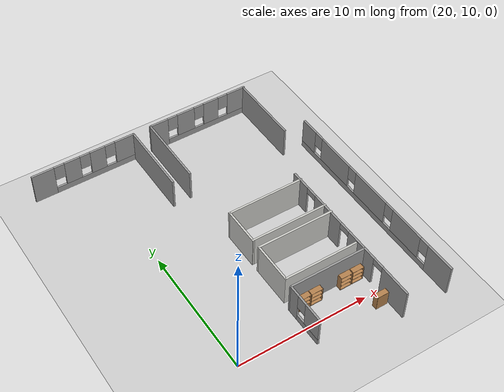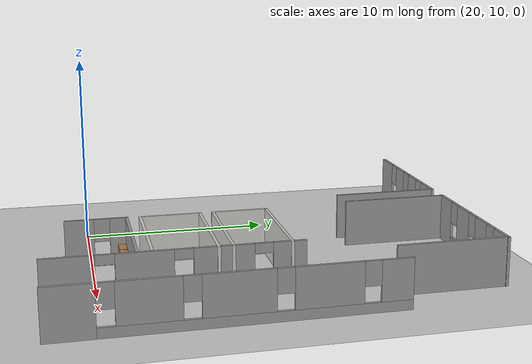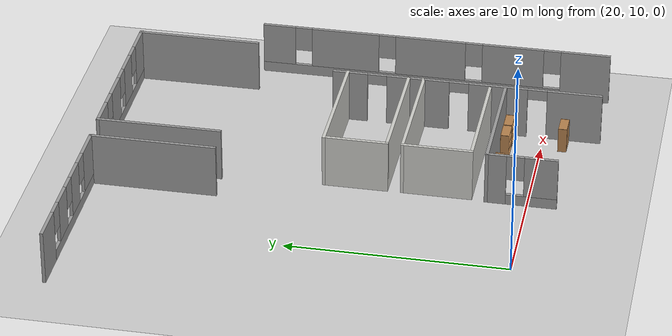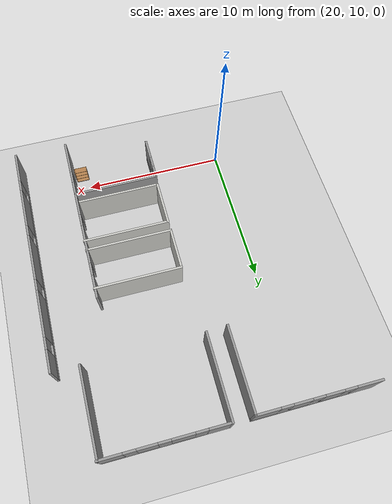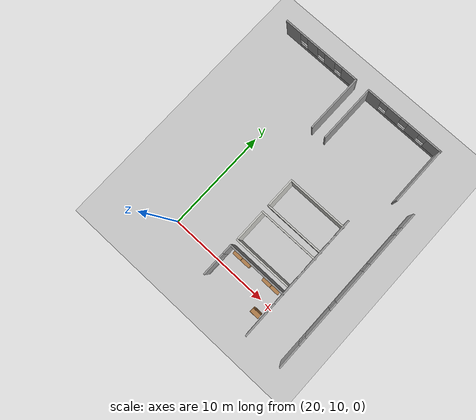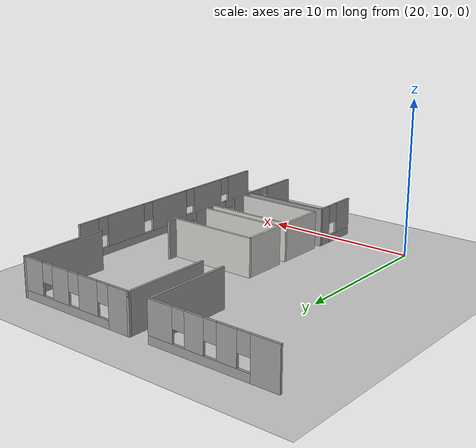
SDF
<sdf version="1.6">
 <world name="default">
  <model name="ground_plane">
   <static>1</static>
   <link name="link">
    <collision name="collision">
     <geometry><plane><normal>0 0 1</normal><size>100 100</size></plane></geometry>
     <surface>
      <contact><collide_bitmask>65535</collide_bitmask></contact>
      <friction><ode><mu>100</mu><mu2>50</mu2></ode></friction>
     </surface>
    </collision>
    <visual name="visual">
     <cast_shadows>0</cast_shadows>
     <geometry><plane><normal>0 0 1</normal><size>100 100</size></plane></geometry>
     <material>
      <script><uri>file://media/materials/scripts/gazebo.material</uri><name>Gazebo/Grey</name></script>
     </material>
    </visual>
   </link>
  </model>
  <model name="firstFloor">
   <pose>-0.116512 3.07366 0 0 -0 0</pose>
   <link name="Wall_16">
    <pose>31.1734 10.582 0 0 0 -1.5708</pose>
    <visual name="Wall_16_Visual_0">
     <pose>-5.43447 0 1.25 0 -0 0</pose>
     <geometry><box><size>1.63106 0.15 2.5</size></box></geometry>
     <material>
      <script><uri>file://media/materials/scripts/gazebo.material</uri><name>Gazebo/Grey</name></script>
      <ambient>1 1 1 1</ambient>
     </material>
     <meta><layer>0</layer></meta>
    </visual>
    <collision name="Wall_16_Collision_0">
     <geometry><box><size>1.63106 0.15 2.5</size></box></geometry>
     <pose>-5.43447 0 1.25 0 -0 0</pose>
    </collision>
    <visual name="Wall_16_Visual_1">
     <pose>-2.26346 0 1.25 0 -0 0</pose>
     <geometry><box><size>2.91096 0.15 2.5</size></box></geometry>
     <material>
      <script><uri>file://media/materials/scripts/gazebo.material</uri><name>Gazebo/Grey</name></script>
      <ambient>1 1 1 1</ambient>
     </material>
     <meta><layer>0</layer></meta>
    </visual>
    <collision name="Wall_16_Collision_1">
     <geometry><box><size>2.91096 0.15 2.5</size></box></geometry>
     <pose>-2.26346 0 1.25 0 -0 0</pose>
    </collision>
    <visual name="Wall_16_Visual_2">
     <pose>1.45677 0 1.25 0 -0 0</pose>
     <geometry><box><size>2.72949 0.15 2.5</size></box></geometry>
     <material>
      <script><uri>file://media/materials/scripts/gazebo.material</uri><name>Gazebo/Grey</name></script>
      <ambient>1 1 1 1</ambient>
     </material>
     <meta><layer>0</layer></meta>
    </visual>
    <collision name="Wall_16_Collision_2">
     <geometry><box><size>2.72949 0.15 2.5</size></box></geometry>
     <pose>1.45677 0 1.25 0 -0 0</pose>
    </collision>
    <visual name="Wall_16_Visual_3">
     <pose>4.98576 0 1.25 0 -0 0</pose>
     <geometry><box><size>2.52848 0.15 2.5</size></box></geometry>
     <material>
      <script><uri>file://media/materials/scripts/gazebo.material</uri><name>Gazebo/Grey</name></script>
      <ambient>1 1 1 1</ambient>
     </material>
     <meta><layer>0</layer></meta>
    </visual>
    <collision name="Wall_16_Collision_3">
     <geometry><box><size>2.52848 0.15 2.5</size></box></geometry>
     <pose>4.98576 0 1.25 0 -0 0</pose>
    </collision>
    <visual name="Wall_16_Visual_4">
     <pose>-4.16894 0 2.25 0 -0 0</pose>
     <geometry><box><size>0.9 0.15 0.5</size></box></geometry>
     <material>
      <script><uri>file://media/materials/scripts/gazebo.material</uri><name>Gazebo/Grey</name></script>
      <ambient>1 1 1 1</ambient>
     </material>
     <meta><layer>0</layer></meta>
    </visual>
    <collision name="Wall_16_Collision_4">
     <geometry><box><size>0.9 0.15 0.5</size></box></geometry>
     <pose>-4.16894 0 2.25 0 -0 0</pose>
    </collision>
    <visual name="Wall_16_Visual_5">
     <pose>-0.357975 0 2.25 0 -0 0</pose>
     <geometry><box><size>0.9 0.15 0.5</size></box></geometry>
     <material>
      <script><uri>file://media/materials/scripts/gazebo.material</uri><name>Gazebo/Grey</name></script>
      <ambient>1 1 1 1</ambient>
     </material>
     <meta><layer>0</layer></meta>
    </visual>
    <collision name="Wall_16_Collision_5">
     <geometry><box><size>0.9 0.15 0.5</size></box></geometry>
     <pose>-0.357975 0 2.25 0 -0 0</pose>
    </collision>
    <visual name="Wall_16_Visual_6">
     <pose>3.27151 0 2.25 0 -0 0</pose>
     <geometry><box><size>0.9 0.15 0.5</size></box></geometry>
     <material>
      <script><uri>file://media/materials/scripts/gazebo.material</uri><name>Gazebo/Grey</name></script>
      <ambient>1 1 1 1</ambient>
     </material>
     <meta><layer>0</layer></meta>
    </visual>
    <collision name="Wall_16_Collision_6">
     <geometry><box><size>0.9 0.15 0.5</size></box></geometry>
     <pose>3.27151 0 2.25 0 -0 0</pose>
    </collision>
   </link>
   <link name="Wall_20">
    <collision name="Wall_20_Collision">
     <geometry><box><size>6 0.15 2.5</size></box></geometry>
     <pose>0 0 1.25 0 -0 0</pose>
    </collision>
    <visual name="Wall_20_Visual">
     <pose>0 0 1.25 0 -0 0</pose>
     <geometry><box><size>6 0.15 2.5</size></box></geometry>
     <material>
      <script><uri>file://media/materials/scripts/gazebo.material</uri><name>Gazebo/CeilingTiled</name></script>
      <ambient>1 1 1 1</ambient>
     </material>
     <meta><layer>0</layer></meta>
    </visual>
    <pose>28.2901 16.1378 0 0 -0 3.14159</pose>
   </link>
   <link name="Wall_21">
    <collision name="Wall_21_Collision">
     <geometry><box><size>3 0.15 2.5</size></box></geometry>
     <pose>0 0 1.25 0 -0 0</pose>
    </collision>
    <visual name="Wall_21_Visual">
     <pose>0 0 1.25 0 -0 0</pose>
     <geometry><box><size>3 0.15 2.5</size></box></geometry>
     <material>
      <script><uri>file://media/materials/scripts/gazebo.material</uri><name>Gazebo/CeilingTiled</name></script>
      <ambient>1 1 1 1</ambient>
     </material>
     <meta><layer>0</layer></meta>
    </visual>
    <pose>25.3651 14.7128 0 0 0 -1.5708</pose>
   </link>
   <link name="Wall_22">
    <collision name="Wall_22_Collision">
     <geometry><box><size>6 0.15 2.5</size></box></geometry>
     <pose>0 0 1.25 0 -0 0</pose>
    </collision>
    <visual name="Wall_22_Visual">
     <pose>0 0 1.25 0 -0 0</pose>
     <geometry><box><size>6 0.15 2.5</size></box></geometry>
     <material>
      <script><uri>file://media/materials/scripts/gazebo.material</uri><name>Gazebo/CeilingTiled</name></script>
      <ambient>1 1 1 1</ambient>
     </material>
     <meta><layer>0</layer></meta>
    </visual>
    <pose>28.2901 13.2878 0 0 -0 0</pose>
   </link>
   <link name="Wall_24">
    <collision name="Wall_24_Collision">
     <geometry><box><size>6 0.15 2.5</size></box></geometry>
     <pose>0 0 1.25 0 -0 0</pose>
    </collision>
    <visual name="Wall_24_Visual">
     <pose>0 0 1.25 0 -0 0</pose>
     <geometry><box><size>6 0.15 2.5</size></box></geometry>
     <material>
      <script><uri>file://media/materials/scripts/gazebo.material</uri><name>Gazebo/CeilingTiled</name></script>
      <ambient>1 1 1 1</ambient>
     </material>
     <meta><layer>0</layer></meta>
    </visual>
    <pose>28.3012 12.5835 0 0 -0 3.14159</pose>
   </link>
   <link name="Wall_25">
    <collision name="Wall_25_Collision">
     <geometry><box><size>3.25 0.15 2.5</size></box></geometry>
     <pose>0 0 1.25 0 -0 0</pose>
    </collision>
    <visual name="Wall_25_Visual">
     <pose>0 0 1.25 0 -0 0</pose>
     <geometry><box><size>3.25 0.15 2.5</size></box></geometry>
     <material>
      <script><uri>file://media/materials/scripts/gazebo.material</uri><name>Gazebo/CeilingTiled</name></script>
      <ambient>1 1 1 1</ambient>
     </material>
     <meta><layer>0</layer></meta>
    </visual>
    <pose>25.3762 11.0335 0 0 0 -1.5708</pose>
   </link>
   <link name="Wall_26">
    <collision name="Wall_26_Collision">
     <geometry><box><size>5.75 0.15 2.5</size></box></geometry>
     <pose>0 0 1.25 0 -0 0</pose>
    </collision>
    <visual name="Wall_26_Visual">
     <pose>0 0 1.25 0 -0 0</pose>
     <geometry><box><size>5.75 0.15 2.5</size></box></geometry>
     <material>
      <script><uri>file://media/materials/scripts/gazebo.material</uri><name>Gazebo/CeilingTiled</name></script>
      <ambient>1 1 1 1</ambient>
     </material>
     <meta><layer>0</layer></meta>
    </visual>
    <pose>28.1762 9.48348 0 0 -0 0</pose>
   </link>
   <link name="Wall_28">
    <collision name="Wall_28_Collision">
     <geometry><box><size>6 0.15 2.5</size></box></geometry>
     <pose>0 0 1.25 0 -0 0</pose>
    </collision>
    <visual name="Wall_28_Visual">
     <pose>0 0 1.25 0 -0 0</pose>
     <geometry><box><size>6 0.15 2.5</size></box></geometry>
     <material>
      <script><uri>file://media/materials/scripts/gazebo.material</uri><name>Gazebo/Grey</name></script>
      <ambient>1 1 1 1</ambient>
     </material>
     <meta><layer>0</layer></meta>
    </visual>
    <pose>28.2321 8.78663 0 0 -0 3.14159</pose>
   </link>
   <link name="Wall_29">
    <pose>25.3071 7.23663 0 0 0 -1.5708</pose>
    <visual name="Wall_29_Visual_0">
     <pose>-1.14911 0 1.25 0 -0 0</pose>
     <geometry><box><size>0.951772 0.15 2.5</size></box></geometry>
     <material>
      <script><uri>file://media/materials/scripts/gazebo.material</uri><name>Gazebo/Grey</name></script>
      <ambient>1 1 1 1</ambient>
     </material>
     <meta><layer>0</layer></meta>
    </visual>
    <collision name="Wall_29_Collision_0">
     <geometry><box><size>0.951772 0.15 2.5</size></box></geometry>
     <pose>-1.14911 0 1.25 0 -0 0</pose>
    </collision>
    <visual name="Wall_29_Visual_1">
     <pose>0.475886 0 0.25 0 -0 0</pose>
     <geometry><box><size>2.29823 0.15 0.5</size></box></geometry>
     <material>
      <script><uri>file://media/materials/scripts/gazebo.material</uri><name>Gazebo/Grey</name></script>
      <ambient>1 1 1 1</ambient>
     </material>
     <meta><layer>0</layer></meta>
    </visual>
    <collision name="Wall_29_Collision_1">
     <geometry><box><size>2.29823 0.15 0.5</size></box></geometry>
     <pose>0.475886 0 0.25 0 -0 0</pose>
    </collision>
    <visual name="Wall_29_Visual_2">
     <pose>0.875886 0 1.5 0 -0 0</pose>
     <geometry><box><size>1.49823 0.15 2</size></box></geometry>
     <material>
      <script><uri>file://media/materials/scripts/gazebo.material</uri><name>Gazebo/Grey</name></script>
      <ambient>1 1 1 1</ambient>
     </material>
     <meta><layer>0</layer></meta>
    </visual>
    <collision name="Wall_29_Collision_2">
     <geometry><box><size>1.49823 0.15 2</size></box></geometry>
     <pose>0.875886 0 1.5 0 -0 0</pose>
    </collision>
    <visual name="Wall_29_Visual_3">
     <pose>-0.273228 0 1.9 0 -0 0</pose>
     <geometry><box><size>0.8 0.15 1.2</size></box></geometry>
     <material>
      <script><uri>file://media/materials/scripts/gazebo.material</uri><name>Gazebo/Grey</name></script>
      <ambient>1 1 1 1</ambient>
     </material>
     <meta><layer>0</layer></meta>
    </visual>
    <collision name="Wall_29_Collision_3">
     <geometry><box><size>0.8 0.15 1.2</size></box></geometry>
     <pose>-0.273228 0 1.9 0 -0 0</pose>
    </collision>
   </link>
   <link name="Wall_48">
    <pose>19.5461 26.3782 0 0 -0 0</pose>
    <visual name="Wall_48_Visual_0">
     <pose>-3.24117 0 1.25 0 -0 0</pose>
     <geometry><box><size>1.71653 0.15 2.5</size></box></geometry>
     <material>
      <script><uri>file://media/materials/scripts/gazebo.material</uri><name>Gazebo/Grey</name></script>
      <ambient>1 1 1 1</ambient>
     </material>
     <meta><layer>0</layer></meta>
    </visual>
    <collision name="Wall_48_Collision_0">
     <geometry><box><size>1.71653 0.15 2.5</size></box></geometry>
     <pose>-3.24117 0 1.25 0 -0 0</pose>
    </collision>
    <visual name="Wall_48_Visual_1">
     <pose>0.858265 0 0.25 0 -0 0</pose>
     <geometry><box><size>6.48234 0.15 0.5</size></box></geometry>
     <material>
      <script><uri>file://media/materials/scripts/gazebo.material</uri><name>Gazebo/Grey</name></script>
      <ambient>1 1 1 1</ambient>
     </material>
     <meta><layer>0</layer></meta>
    </visual>
    <collision name="Wall_48_Collision_1">
     <geometry><box><size>6.48234 0.15 0.5</size></box></geometry>
     <pose>0.858265 0 0.25 0 -0 0</pose>
    </collision>
    <visual name="Wall_48_Visual_2">
     <pose>-0.96873 0 1.5 0 -0 0</pose>
     <geometry><box><size>1.22835 0.15 2</size></box></geometry>
     <material>
      <script><uri>file://media/materials/scripts/gazebo.material</uri><name>Gazebo/Grey</name></script>
      <ambient>1 1 1 1</ambient>
     </material>
     <meta><layer>0</layer></meta>
    </visual>
    <collision name="Wall_48_Collision_2">
     <geometry><box><size>1.22835 0.15 2</size></box></geometry>
     <pose>-0.96873 0 1.5 0 -0 0</pose>
    </collision>
    <visual name="Wall_48_Visual_3">
     <pose>1.04974 0 1.5 0 -0 0</pose>
     <geometry><box><size>1.2086 0.15 2</size></box></geometry>
     <material>
      <script><uri>file://media/materials/scripts/gazebo.material</uri><name>Gazebo/Grey</name></script>
      <ambient>1 1 1 1</ambient>
     </material>
     <meta><layer>0</layer></meta>
    </visual>
    <collision name="Wall_48_Collision_3">
     <geometry><box><size>1.2086 0.15 2</size></box></geometry>
     <pose>1.04974 0 1.5 0 -0 0</pose>
    </collision>
    <visual name="Wall_48_Visual_4">
     <pose>3.27674 0 1.5 0 -0 0</pose>
     <geometry><box><size>1.64539 0.15 2</size></box></geometry>
     <material>
      <script><uri>file://media/materials/scripts/gazebo.material</uri><name>Gazebo/Grey</name></script>
      <ambient>1 1 1 1</ambient>
     </material>
     <meta><layer>0</layer></meta>
    </visual>
    <collision name="Wall_48_Collision_4">
     <geometry><box><size>1.64539 0.15 2</size></box></geometry>
     <pose>3.27674 0 1.5 0 -0 0</pose>
    </collision>
    <visual name="Wall_48_Visual_5">
     <pose>-1.9829 0 1.9 0 -0 0</pose>
     <geometry><box><size>0.8 0.15 1.2</size></box></geometry>
     <material>
      <script><uri>file://media/materials/scripts/gazebo.material</uri><name>Gazebo/Grey</name></script>
      <ambient>1 1 1 1</ambient>
     </material>
     <meta><layer>0</layer></meta>
    </visual>
    <collision name="Wall_48_Collision_5">
     <geometry><box><size>0.8 0.15 1.2</size></box></geometry>
     <pose>-1.9829 0 1.9 0 -0 0</pose>
    </collision>
    <visual name="Wall_48_Visual_6">
     <pose>0.045444 0 1.9 0 -0 0</pose>
     <geometry><box><size>0.8 0.15 1.2</size></box></geometry>
     <material>
      <script><uri>file://media/materials/scripts/gazebo.material</uri><name>Gazebo/Grey</name></script>
      <ambient>1 1 1 1</ambient>
     </material>
     <meta><layer>0</layer></meta>
    </visual>
    <collision name="Wall_48_Collision_6">
     <geometry><box><size>0.8 0.15 1.2</size></box></geometry>
     <pose>0.045444 0 1.9 0 -0 0</pose>
    </collision>
    <visual name="Wall_48_Visual_7">
     <pose>2.05404 0 1.9 0 -0 0</pose>
     <geometry><box><size>0.8 0.15 1.2</size></box></geometry>
     <material>
      <script><uri>file://media/materials/scripts/gazebo.material</uri><name>Gazebo/Grey</name></script>
      <ambient>1 1 1 1</ambient>
     </material>
     <meta><layer>0</layer></meta>
    </visual>
    <collision name="Wall_48_Collision_7">
     <geometry><box><size>0.8 0.15 1.2</size></box></geometry>
     <pose>2.05404 0 1.9 0 -0 0</pose>
    </collision>
   </link>
   <link name="Wall_49">
    <collision name="Wall_49_Collision">
     <geometry><box><size>5.75 0.15 2.5</size></box></geometry>
     <pose>0 0 1.25 0 -0 0</pose>
    </collision>
    <visual name="Wall_49_Visual">
     <pose>0 0 1.25 0 -0 0</pose>
     <geometry><box><size>5.75 0.15 2.5</size></box></geometry>
     <material>
      <script><uri>file://media/materials/scripts/gazebo.material</uri><name>Gazebo/Grey</name></script>
      <ambient>1 1 1 1</ambient>
     </material>
     <meta><layer>0</layer></meta>
    </visual>
    <pose>23.5705 23.5384 0 0 0 -1.5708</pose>
   </link>
   <link name="Wall_51">
    <collision name="Wall_51_Collision">
     <geometry><box><size>5.75 0.15 2.5</size></box></geometry>
     <pose>0 0 1.25 0 -0 0</pose>
    </collision>
    <visual name="Wall_51_Visual">
     <pose>0 0 1.25 0 -0 0</pose>
     <geometry><box><size>5.75 0.15 2.5</size></box></geometry>
     <material>
      <script><uri>file://media/materials/scripts/gazebo.material</uri><name>Gazebo/Grey</name></script>
      <ambient>1 1 1 1</ambient>
     </material>
     <meta><layer>0</layer></meta>
    </visual>
    <pose>24.9879 23.6098 0 0 -0 1.5708</pose>
   </link>
   <link name="Wall_53">
    <pose>29.0322 26.4098 0 0 -0 0</pose>
    <visual name="Wall_53_Visual_0">
     <pose>-3.35683 0 1.25 0 -0 0</pose>
     <geometry><box><size>1.52499 0.15 2.5</size></box></geometry>
     <material>
      <script><uri>file://media/materials/scripts/gazebo.material</uri><name>Gazebo/Grey</name></script>
      <ambient>1 1 1 1</ambient>
     </material>
     <meta><layer>0</layer></meta>
    </visual>
    <collision name="Wall_53_Collision_0">
     <geometry><box><size>1.52499 0.15 2.5</size></box></geometry>
     <pose>-3.35683 0 1.25 0 -0 0</pose>
    </collision>
    <visual name="Wall_53_Visual_1">
     <pose>0.762497 0 0.25 0 -0 0</pose>
     <geometry><box><size>6.71365 0.15 0.5</size></box></geometry>
     <material>
      <script><uri>file://media/materials/scripts/gazebo.material</uri><name>Gazebo/Grey</name></script>
      <ambient>1 1 1 1</ambient>
     </material>
     <meta><layer>0</layer></meta>
    </visual>
    <collision name="Wall_53_Collision_1">
     <geometry><box><size>6.71365 0.15 0.5</size></box></geometry>
     <pose>0.762497 0 0.25 0 -0 0</pose>
    </collision>
    <visual name="Wall_53_Visual_2">
     <pose>-1.06856 0 1.5 0 -0 0</pose>
     <geometry><box><size>1.45153 0.15 2</size></box></geometry>
     <material>
      <script><uri>file://media/materials/scripts/gazebo.material</uri><name>Gazebo/Grey</name></script>
      <ambient>1 1 1 1</ambient>
     </material>
     <meta><layer>0</layer></meta>
    </visual>
    <collision name="Wall_53_Collision_2">
     <geometry><box><size>1.45153 0.15 2</size></box></geometry>
     <pose>-1.06856 0 1.5 0 -0 0</pose>
    </collision>
    <visual name="Wall_53_Visual_3">
     <pose>1.10034 0 1.5 0 -0 0</pose>
     <geometry><box><size>1.28627 0.15 2</size></box></geometry>
     <material>
      <script><uri>file://media/materials/scripts/gazebo.material</uri><name>Gazebo/Grey</name></script>
      <ambient>1 1 1 1</ambient>
     </material>
     <meta><layer>0</layer></meta>
    </visual>
    <collision name="Wall_53_Collision_3">
     <geometry><box><size>1.28627 0.15 2</size></box></geometry>
     <pose>1.10034 0 1.5 0 -0 0</pose>
    </collision>
    <visual name="Wall_53_Visual_4">
     <pose>3.3314 0 1.5 0 -0 0</pose>
     <geometry><box><size>1.57585 0.15 2</size></box></geometry>
     <material>
      <script><uri>file://media/materials/scripts/gazebo.material</uri><name>Gazebo/Grey</name></script>
      <ambient>1 1 1 1</ambient>
     </material>
     <meta><layer>0</layer></meta>
    </visual>
    <collision name="Wall_53_Collision_4">
     <geometry><box><size>1.57585 0.15 2</size></box></geometry>
     <pose>3.3314 0 1.5 0 -0 0</pose>
    </collision>
    <visual name="Wall_53_Visual_5">
     <pose>-2.19433 0 1.9 0 -0 0</pose>
     <geometry><box><size>0.8 0.15 1.2</size></box></geometry>
     <material>
      <script><uri>file://media/materials/scripts/gazebo.material</uri><name>Gazebo/Grey</name></script>
      <ambient>1 1 1 1</ambient>
     </material>
     <meta><layer>0</layer></meta>
    </visual>
    <collision name="Wall_53_Collision_5">
     <geometry><box><size>0.8 0.15 1.2</size></box></geometry>
     <pose>-2.19433 0 1.9 0 -0 0</pose>
    </collision>
    <visual name="Wall_53_Visual_6">
     <pose>0.057199 0 1.9 0 -0 0</pose>
     <geometry><box><size>0.8 0.15 1.2</size></box></geometry>
     <material>
      <script><uri>file://media/materials/scripts/gazebo.material</uri><name>Gazebo/Grey</name></script>
      <ambient>1 1 1 1</ambient>
     </material>
     <meta><layer>0</layer></meta>
    </visual>
    <collision name="Wall_53_Collision_6">
     <geometry><box><size>0.8 0.15 1.2</size></box></geometry>
     <pose>0.057199 0 1.9 0 -0 0</pose>
    </collision>
    <visual name="Wall_53_Visual_7">
     <pose>2.14347 0 1.9 0 -0 0</pose>
     <geometry><box><size>0.8 0.15 1.2</size></box></geometry>
     <material>
      <script><uri>file://media/materials/scripts/gazebo.material</uri><name>Gazebo/Grey</name></script>
      <ambient>1 1 1 1</ambient>
     </material>
     <meta><layer>0</layer></meta>
    </visual>
    <collision name="Wall_53_Collision_7">
     <geometry><box><size>0.8 0.15 1.2</size></box></geometry>
     <pose>2.14347 0 1.9 0 -0 0</pose>
    </collision>
   </link>
   <link name="Wall_54">
    <collision name="Wall_54_Collision">
     <geometry><box><size>5.75 0.15 2.5</size></box></geometry>
     <pose>0 0 1.25 0 -0 0</pose>
    </collision>
    <visual name="Wall_54_Visual">
     <pose>0 0 1.25 0 -0 0</pose>
     <geometry><box><size>5.75 0.15 2.5</size></box></geometry>
     <material>
      <script><uri>file://media/materials/scripts/gazebo.material</uri><name>Gazebo/Grey</name></script>
      <ambient>1 1 1 1</ambient>
     </material>
     <meta><layer>0</layer></meta>
    </visual>
    <pose>33.0368 23.6098 0 0 0 -1.5708</pose>
   </link>
   <link name="Wall_8">
    <pose>34.8468 12.6197 0 0 -0 1.5708</pose>
    <visual name="Wall_8_Visual_0">
     <pose>-7.09151 0 1.25 0 -0 0</pose>
     <geometry><box><size>2.31697 0.15 2.5</size></box></geometry>
     <material>
      <script><uri>file://media/materials/scripts/gazebo.material</uri><name>Gazebo/Grey</name></script>
      <ambient>1 1 1 1</ambient>
     </material>
     <meta><layer>0</layer></meta>
    </visual>
    <collision name="Wall_8_Collision_0">
     <geometry><box><size>2.31697 0.15 2.5</size></box></geometry>
     <pose>-7.09151 0 1.25 0 -0 0</pose>
    </collision>
    <visual name="Wall_8_Visual_1">
     <pose>1.15849 0 0.25 0 -0 0</pose>
     <geometry><box><size>14.183 0.15 0.5</size></box></geometry>
     <material>
      <script><uri>file://media/materials/scripts/gazebo.material</uri><name>Gazebo/Grey</name></script>
      <ambient>1 1 1 1</ambient>
     </material>
     <meta><layer>0</layer></meta>
    </visual>
    <collision name="Wall_8_Collision_1">
     <geometry><box><size>14.183 0.15 0.5</size></box></geometry>
     <pose>1.15849 0 0.25 0 -0 0</pose>
    </collision>
    <visual name="Wall_8_Visual_2">
     <pose>-3.68153 0 1.5 0 -0 0</pose>
     <geometry><box><size>2.903 0.15 2</size></box></geometry>
     <material>
      <script><uri>file://media/materials/scripts/gazebo.material</uri><name>Gazebo/Grey</name></script>
      <ambient>1 1 1 1</ambient>
     </material>
     <meta><layer>0</layer></meta>
    </visual>
    <collision name="Wall_8_Collision_2">
     <geometry><box><size>2.903 0.15 2</size></box></geometry>
     <pose>-3.68153 0 1.5 0 -0 0</pose>
    </collision>
    <visual name="Wall_8_Visual_3">
     <pose>0.233074 0 1.5 0 -0 0</pose>
     <geometry><box><size>3.3262 0.15 2</size></box></geometry>
     <material>
      <script><uri>file://media/materials/scripts/gazebo.material</uri><name>Gazebo/Grey</name></script>
      <ambient>1 1 1 1</ambient>
     </material>
     <meta><layer>0</layer></meta>
    </visual>
    <collision name="Wall_8_Collision_3">
     <geometry><box><size>3.3262 0.15 2</size></box></geometry>
     <pose>0.233074 0 1.5 0 -0 0</pose>
    </collision>
    <visual name="Wall_8_Visual_4">
     <pose>4.30637 0 1.5 0 -0 0</pose>
     <geometry><box><size>3.2204 0.15 2</size></box></geometry>
     <material>
      <script><uri>file://media/materials/scripts/gazebo.material</uri><name>Gazebo/Grey</name></script>
      <ambient>1 1 1 1</ambient>
     </material>
     <meta><layer>0</layer></meta>
    </visual>
    <collision name="Wall_8_Collision_4">
     <geometry><box><size>3.2204 0.15 2</size></box></geometry>
     <pose>4.30637 0 1.5 0 -0 0</pose>
    </collision>
    <visual name="Wall_8_Visual_5">
     <pose>7.48329 0 1.5 0 -0 0</pose>
     <geometry><box><size>1.53343 0.15 2</size></box></geometry>
     <material>
      <script><uri>file://media/materials/scripts/gazebo.material</uri><name>Gazebo/Grey</name></script>
      <ambient>1 1 1 1</ambient>
     </material>
     <meta><layer>0</layer></meta>
    </visual>
    <collision name="Wall_8_Collision_5">
     <geometry><box><size>1.53343 0.15 2</size></box></geometry>
     <pose>7.48329 0 1.5 0 -0 0</pose>
    </collision>
    <visual name="Wall_8_Visual_6">
     <pose>-5.53303 0 1.9 0 -0 0</pose>
     <geometry><box><size>0.8 0.15 1.2</size></box></geometry>
     <material>
      <script><uri>file://media/materials/scripts/gazebo.material</uri><name>Gazebo/Grey</name></script>
      <ambient>1 1 1 1</ambient>
     </material>
     <meta><layer>0</layer></meta>
    </visual>
    <collision name="Wall_8_Collision_6">
     <geometry><box><size>0.8 0.15 1.2</size></box></geometry>
     <pose>-5.53303 0 1.9 0 -0 0</pose>
    </collision>
    <visual name="Wall_8_Visual_7">
     <pose>-1.83003 0 1.9 0 -0 0</pose>
     <geometry><box><size>0.8 0.15 1.2</size></box></geometry>
     <material>
      <script><uri>file://media/materials/scripts/gazebo.material</uri><name>Gazebo/Grey</name></script>
      <ambient>1 1 1 1</ambient>
     </material>
     <meta><layer>0</layer></meta>
    </visual>
    <collision name="Wall_8_Collision_7">
     <geometry><box><size>0.8 0.15 1.2</size></box></geometry>
     <pose>-1.83003 0 1.9 0 -0 0</pose>
    </collision>
    <visual name="Wall_8_Visual_8">
     <pose>2.29617 0 1.9 0 -0 0</pose>
     <geometry><box><size>0.8 0.15 1.2</size></box></geometry>
     <material>
      <script><uri>file://media/materials/scripts/gazebo.material</uri><name>Gazebo/Grey</name></script>
      <ambient>1 1 1 1</ambient>
     </material>
     <meta><layer>0</layer></meta>
    </visual>
    <collision name="Wall_8_Collision_8">
     <geometry><box><size>0.8 0.15 1.2</size></box></geometry>
     <pose>2.29617 0 1.9 0 -0 0</pose>
    </collision>
    <visual name="Wall_8_Visual_9">
     <pose>6.31657 0 1.9 0 -0 0</pose>
     <geometry><box><size>0.8 0.15 1.2</size></box></geometry>
     <material>
      <script><uri>file://media/materials/scripts/gazebo.material</uri><name>Gazebo/Grey</name></script>
      <ambient>1 1 1 1</ambient>
     </material>
     <meta><layer>0</layer></meta>
    </visual>
    <collision name="Wall_8_Collision_9">
     <geometry><box><size>0.8 0.15 1.2</size></box></geometry>
     <pose>6.31657 0 1.9 0 -0 0</pose>
    </collision>
   </link>
   <static>1</static>
  </model>
  <model name="bookshelf">
   <static>1</static>
   <link name="link">
    <inertial><mass>1</mass></inertial>
    <collision name="back">
     <pose>0 0.005 0.6 0 -0 0</pose>
     <geometry><box><size>0.9 0.01 1.2</size></box></geometry>
    </collision>
    <visual name="visual1">
     <pose>0 0.005 0.6 0 -0 0</pose>
     <geometry><box><size>0.9 0.01 1.2</size></box></geometry>
     <material>
      <script><uri>file://media/materials/scripts/gazebo.material</uri><name>Gazebo/Wood</name></script>
     </material>
    </visual>
    <collision name="left_side">
     <pose>0.45 -0.195 0.6 0 -0 0</pose>
     <geometry><box><size>0.02 0.4 1.2</size></box></geometry>
    </collision>
    <visual name="visual2">
     <pose>0.45 -0.195 0.6 0 -0 0</pose>
     <geometry><box><size>0.02 0.4 1.2</size></box></geometry>
     <material>
      <script><uri>file://media/materials/scripts/gazebo.material</uri><name>Gazebo/Wood</name></script>
     </material>
    </visual>
    <collision name="right_side">
     <pose>-0.45 -0.195 0.6 0 -0 0</pose>
     <geometry><box><size>0.02 0.4 1.2</size></box></geometry>
    </collision>
    <visual name="visual3">
     <pose>-0.45 -0.195 0.6 0 -0 0</pose>
     <geometry><box><size>0.02 0.4 1.2</size></box></geometry>
     <material>
      <script><uri>file://media/materials/scripts/gazebo.material</uri><name>Gazebo/Wood</name></script>
     </material>
    </visual>
    <collision name="bottom">
     <pose>0 -0.195 0.03 0 -0 0</pose>
     <geometry><box><size>0.88 0.4 0.06</size></box></geometry>
    </collision>
    <visual name="visual4">
     <pose>0 -0.195 0.03 0 -0 0</pose>
     <geometry><box><size>0.88 0.4 0.06</size></box></geometry>
     <material>
      <script><uri>file://media/materials/scripts/gazebo.material</uri><name>Gazebo/Wood</name></script>
     </material>
    </visual>
    <collision name="top">
     <pose>0 -0.195 1.19 0 -0 0</pose>
     <geometry><box><size>0.88 0.4 0.02</size></box></geometry>
    </collision>
    <visual name="visual5">
     <pose>0 -0.195 1.19 0 -0 0</pose>
     <geometry><box><size>0.88 0.4 0.02</size></box></geometry>
     <material>
      <script><uri>file://media/materials/scripts/gazebo.material</uri><name>Gazebo/Wood</name></script>
     </material>
    </visual>
    <collision name="low_shelf">
     <pose>0 -0.195 0.43 0 -0 0</pose>
     <geometry><box><size>0.88 0.4 0.02</size></box></geometry>
    </collision>
    <visual name="visual6">
     <pose>0 -0.195 0.43 0 -0 0</pose>
     <geometry><box><size>0.88 0.4 0.02</size></box></geometry>
     <material>
      <script><uri>file://media/materials/scripts/gazebo.material</uri><name>Gazebo/Wood</name></script>
     </material>
    </visual>
    <collision name="high_shelf">
     <pose>0 -0.195 0.8 0 -0 0</pose>
     <geometry><box><size>0.88 0.4 0.02</size></box></geometry>
    </collision>
    <visual name="visual7">
     <pose>0 -0.195 0.8 0 -0 0</pose>
     <geometry><box><size>0.88 0.4 0.02</size></box></geometry>
     <material>
      <script><uri>file://media/materials/scripts/gazebo.material</uri><name>Gazebo/Wood</name></script>
     </material>
    </visual>
   </link>
   <pose>26.0602 11.75 0 0 -0 0</pose>
  </model>
  <model name="bookshelf_clone">
   <static>1</static>
   <link name="link">
    <inertial><mass>1</mass></inertial>
    <collision name="back">
     <pose>0 0.005 0.6 0 -0 0</pose>
     <geometry><box><size>0.9 0.01 1.2</size></box></geometry>
    </collision>
    <visual name="visual1">
     <pose>0 0.005 0.6 0 -0 0</pose>
     <geometry><box><size>0.9 0.01 1.2</size></box></geometry>
     <material>
      <script><uri>file://media/materials/scripts/gazebo.material</uri><name>Gazebo/Wood</name></script>
     </material>
    </visual>
    <collision name="left_side">
     <pose>0.45 -0.195 0.6 0 -0 0</pose>
     <geometry><box><size>0.02 0.4 1.2</size></box></geometry>
    </collision>
    <visual name="visual2">
     <pose>0.45 -0.195 0.6 0 -0 0</pose>
     <geometry><box><size>0.02 0.4 1.2</size></box></geometry>
     <material>
      <script><uri>file://media/materials/scripts/gazebo.material</uri><name>Gazebo/Wood</name></script>
     </material>
    </visual>
    <collision name="right_side">
     <pose>-0.45 -0.195 0.6 0 -0 0</pose>
     <geometry><box><size>0.02 0.4 1.2</size></box></geometry>
    </collision>
    <visual name="visual3">
     <pose>-0.45 -0.195 0.6 0 -0 0</pose>
     <geometry><box><size>0.02 0.4 1.2</size></box></geometry>
     <material>
      <script><uri>file://media/materials/scripts/gazebo.material</uri><name>Gazebo/Wood</name></script>
     </material>
    </visual>
    <collision name="bottom">
     <pose>0 -0.195 0.03 0 -0 0</pose>
     <geometry><box><size>0.88 0.4 0.06</size></box></geometry>
    </collision>
    <visual name="visual4">
     <pose>0 -0.195 0.03 0 -0 0</pose>
     <geometry><box><size>0.88 0.4 0.06</size></box></geometry>
     <material>
      <script><uri>file://media/materials/scripts/gazebo.material</uri><name>Gazebo/Wood</name></script>
     </material>
    </visual>
    <collision name="top">
     <pose>0 -0.195 1.19 0 -0 0</pose>
     <geometry><box><size>0.88 0.4 0.02</size></box></geometry>
    </collision>
    <visual name="visual5">
     <pose>0 -0.195 1.19 0 -0 0</pose>
     <geometry><box><size>0.88 0.4 0.02</size></box></geometry>
     <material>
      <script><uri>file://media/materials/scripts/gazebo.material</uri><name>Gazebo/Wood</name></script>
     </material>
    </visual>
    <collision name="low_shelf">
     <pose>0 -0.195 0.43 0 -0 0</pose>
     <geometry><box><size>0.88 0.4 0.02</size></box></geometry>
    </collision>
    <visual name="visual6">
     <pose>0 -0.195 0.43 0 -0 0</pose>
     <geometry><box><size>0.88 0.4 0.02</size></box></geometry>
     <material>
      <script><uri>file://media/materials/scripts/gazebo.material</uri><name>Gazebo/Wood</name></script>
     </material>
    </visual>
    <collision name="high_shelf">
     <pose>0 -0.195 0.8 0 -0 0</pose>
     <geometry><box><size>0.88 0.4 0.02</size></box></geometry>
    </collision>
    <visual name="visual7">
     <pose>0 -0.195 0.8 0 -0 0</pose>
     <geometry><box><size>0.88 0.4 0.02</size></box></geometry>
     <material>
      <script><uri>file://media/materials/scripts/gazebo.material</uri><name>Gazebo/Wood</name></script>
     </material>
    </visual>
   </link>
   <pose>26.9959 11.75 0 0 -0 0</pose>
  </model>
  <model name="bookshelf_clone_clone">
   <static>1</static>
   <link name="link">
    <inertial><mass>1</mass></inertial>
    <collision name="back">
     <pose>0 0.005 0.6 0 -0 0</pose>
     <geometry><box><size>0.9 0.01 1.2</size></box></geometry>
    </collision>
    <visual name="visual1">
     <pose>0 0.005 0.6 0 -0 0</pose>
     <geometry><box><size>0.9 0.01 1.2</size></box></geometry>
     <material>
      <script><uri>file://media/materials/scripts/gazebo.material</uri><name>Gazebo/Wood</name></script>
     </material>
    </visual>
    <collision name="left_side">
     <pose>0.45 -0.195 0.6 0 -0 0</pose>
     <geometry><box><size>0.02 0.4 1.2</size></box></geometry>
    </collision>
    <visual name="visual2">
     <pose>0.45 -0.195 0.6 0 -0 0</pose>
     <geometry><box><size>0.02 0.4 1.2</size></box></geometry>
     <material>
      <script><uri>file://media/materials/scripts/gazebo.material</uri><name>Gazebo/Wood</name></script>
     </material>
    </visual>
    <collision name="right_side">
     <pose>-0.45 -0.195 0.6 0 -0 0</pose>
     <geometry><box><size>0.02 0.4 1.2</size></box></geometry>
    </collision>
    <visual name="visual3">
     <pose>-0.45 -0.195 0.6 0 -0 0</pose>
     <geometry><box><size>0.02 0.4 1.2</size></box></geometry>
     <material>
      <script><uri>file://media/materials/scripts/gazebo.material</uri><name>Gazebo/Wood</name></script>
     </material>
    </visual>
    <collision name="bottom">
     <pose>0 -0.195 0.03 0 -0 0</pose>
     <geometry><box><size>0.88 0.4 0.06</size></box></geometry>
    </collision>
    <visual name="visual4">
     <pose>0 -0.195 0.03 0 -0 0</pose>
     <geometry><box><size>0.88 0.4 0.06</size></box></geometry>
     <material>
      <script><uri>file://media/materials/scripts/gazebo.material</uri><name>Gazebo/Wood</name></script>
     </material>
    </visual>
    <collision name="top">
     <pose>0 -0.195 1.19 0 -0 0</pose>
     <geometry><box><size>0.88 0.4 0.02</size></box></geometry>
    </collision>
    <visual name="visual5">
     <pose>0 -0.195 1.19 0 -0 0</pose>
     <geometry><box><size>0.88 0.4 0.02</size></box></geometry>
     <material>
      <script><uri>file://media/materials/scripts/gazebo.material</uri><name>Gazebo/Wood</name></script>
     </material>
    </visual>
    <collision name="low_shelf">
     <pose>0 -0.195 0.43 0 -0 0</pose>
     <geometry><box><size>0.88 0.4 0.02</size></box></geometry>
    </collision>
    <visual name="visual6">
     <pose>0 -0.195 0.43 0 -0 0</pose>
     <geometry><box><size>0.88 0.4 0.02</size></box></geometry>
     <material>
      <script><uri>file://media/materials/scripts/gazebo.material</uri><name>Gazebo/Wood</name></script>
     </material>
    </visual>
    <collision name="high_shelf">
     <pose>0 -0.195 0.8 0 -0 0</pose>
     <geometry><box><size>0.88 0.4 0.02</size></box></geometry>
    </collision>
    <visual name="visual7">
     <pose>0 -0.195 0.8 0 -0 0</pose>
     <geometry><box><size>0.88 0.4 0.02</size></box></geometry>
     <material>
      <script><uri>file://media/materials/scripts/gazebo.material</uri><name>Gazebo/Wood</name></script>
     </material>
    </visual>
   </link>
   <pose>29.3855 11.75 0 0 -0 0</pose>
  </model>
  <model name="bookshelf_clone_clone_0">
   <static>1</static>
   <link name="link">
    <inertial><mass>1</mass></inertial>
    <collision name="back">
     <pose>0 0.005 0.6 0 -0 0</pose>
     <geometry><box><size>0.9 0.01 1.2</size></box></geometry>
    </collision>
    <visual name="visual1">
     <pose>0 0.005 0.6 0 -0 0</pose>
     <geometry><box><size>0.9 0.01 1.2</size></box></geometry>
     <material>
      <script><uri>file://media/materials/scripts/gazebo.material</uri><name>Gazebo/Wood</name></script>
     </material>
    </visual>
    <collision name="left_side">
     <pose>0.45 -0.195 0.6 0 -0 0</pose>
     <geometry><box><size>0.02 0.4 1.2</size></box></geometry>
    </collision>
    <visual name="visual2">
     <pose>0.45 -0.195 0.6 0 -0 0</pose>
     <geometry><box><size>0.02 0.4 1.2</size></box></geometry>
     <material>
      <script><uri>file://media/materials/scripts/gazebo.material</uri><name>Gazebo/Wood</name></script>
     </material>
    </visual>
    <collision name="right_side">
     <pose>-0.45 -0.195 0.6 0 -0 0</pose>
     <geometry><box><size>0.02 0.4 1.2</size></box></geometry>
    </collision>
    <visual name="visual3">
     <pose>-0.45 -0.195 0.6 0 -0 0</pose>
     <geometry><box><size>0.02 0.4 1.2</size></box></geometry>
     <material>
      <script><uri>file://media/materials/scripts/gazebo.material</uri><name>Gazebo/Wood</name></script>
     </material>
    </visual>
    <collision name="bottom">
     <pose>0 -0.195 0.03 0 -0 0</pose>
     <geometry><box><size>0.88 0.4 0.06</size></box></geometry>
    </collision>
    <visual name="visual4">
     <pose>0 -0.195 0.03 0 -0 0</pose>
     <geometry><box><size>0.88 0.4 0.06</size></box></geometry>
     <material>
      <script><uri>file://media/materials/scripts/gazebo.material</uri><name>Gazebo/Wood</name></script>
     </material>
    </visual>
    <collision name="top">
     <pose>0 -0.195 1.19 0 -0 0</pose>
     <geometry><box><size>0.88 0.4 0.02</size></box></geometry>
    </collision>
    <visual name="visual5">
     <pose>0 -0.195 1.19 0 -0 0</pose>
     <geometry><box><size>0.88 0.4 0.02</size></box></geometry>
     <material>
      <script><uri>file://media/materials/scripts/gazebo.material</uri><name>Gazebo/Wood</name></script>
     </material>
    </visual>
    <collision name="low_shelf">
     <pose>0 -0.195 0.43 0 -0 0</pose>
     <geometry><box><size>0.88 0.4 0.02</size></box></geometry>
    </collision>
    <visual name="visual6">
     <pose>0 -0.195 0.43 0 -0 0</pose>
     <geometry><box><size>0.88 0.4 0.02</size></box></geometry>
     <material>
      <script><uri>file://media/materials/scripts/gazebo.material</uri><name>Gazebo/Wood</name></script>
     </material>
    </visual>
    <collision name="high_shelf">
     <pose>0 -0.195 0.8 0 -0 0</pose>
     <geometry><box><size>0.88 0.4 0.02</size></box></geometry>
    </collision>
    <visual name="visual7">
     <pose>0 -0.195 0.8 0 -0 0</pose>
     <geometry><box><size>0.88 0.4 0.02</size></box></geometry>
     <material>
      <script><uri>file://media/materials/scripts/gazebo.material</uri><name>Gazebo/Wood</name></script>
     </material>
    </visual>
   </link>
   <pose>30.3266 11.75 0 0 -0 0</pose>
  </model>
  <model name="bookshelf_clone_clone_1">
   <static>1</static>
   <link name="link">
    <inertial><mass>1</mass></inertial>
    <collision name="back">
     <pose>0 0.005 0.6 0 -0 0</pose>
     <geometry><box><size>0.9 0.01 1.2</size></box></geometry>
    </collision>
    <visual name="visual1">
     <pose>0 0.005 0.6 0 -0 0</pose>
     <geometry><box><size>0.9 0.01 1.2</size></box></geometry>
     <material>
      <script><uri>file://media/materials/scripts/gazebo.material</uri><name>Gazebo/Wood</name></script>
     </material>
    </visual>
    <collision name="left_side">
     <pose>0.45 -0.195 0.6 0 -0 0</pose>
     <geometry><box><size>0.02 0.4 1.2</size></box></geometry>
    </collision>
    <visual name="visual2">
     <pose>0.45 -0.195 0.6 0 -0 0</pose>
     <geometry><box><size>0.02 0.4 1.2</size></box></geometry>
     <material>
      <script><uri>file://media/materials/scripts/gazebo.material</uri><name>Gazebo/Wood</name></script>
     </material>
    </visual>
    <collision name="right_side">
     <pose>-0.45 -0.195 0.6 0 -0 0</pose>
     <geometry><box><size>0.02 0.4 1.2</size></box></geometry>
    </collision>
    <visual name="visual3">
     <pose>-0.45 -0.195 0.6 0 -0 0</pose>
     <geometry><box><size>0.02 0.4 1.2</size></box></geometry>
     <material>
      <script><uri>file://media/materials/scripts/gazebo.material</uri><name>Gazebo/Wood</name></script>
     </material>
    </visual>
    <collision name="bottom">
     <pose>0 -0.195 0.03 0 -0 0</pose>
     <geometry><box><size>0.88 0.4 0.06</size></box></geometry>
    </collision>
    <visual name="visual4">
     <pose>0 -0.195 0.03 0 -0 0</pose>
     <geometry><box><size>0.88 0.4 0.06</size></box></geometry>
     <material>
      <script><uri>file://media/materials/scripts/gazebo.material</uri><name>Gazebo/Wood</name></script>
     </material>
    </visual>
    <collision name="top">
     <pose>0 -0.195 1.19 0 -0 0</pose>
     <geometry><box><size>0.88 0.4 0.02</size></box></geometry>
    </collision>
    <visual name="visual5">
     <pose>0 -0.195 1.19 0 -0 0</pose>
     <geometry><box><size>0.88 0.4 0.02</size></box></geometry>
     <material>
      <script><uri>file://media/materials/scripts/gazebo.material</uri><name>Gazebo/Wood</name></script>
     </material>
    </visual>
    <collision name="low_shelf">
     <pose>0 -0.195 0.43 0 -0 0</pose>
     <geometry><box><size>0.88 0.4 0.02</size></box></geometry>
    </collision>
    <visual name="visual6">
     <pose>0 -0.195 0.43 0 -0 0</pose>
     <geometry><box><size>0.88 0.4 0.02</size></box></geometry>
     <material>
      <script><uri>file://media/materials/scripts/gazebo.material</uri><name>Gazebo/Wood</name></script>
     </material>
    </visual>
    <collision name="high_shelf">
     <pose>0 -0.195 0.8 0 -0 0</pose>
     <geometry><box><size>0.88 0.4 0.02</size></box></geometry>
    </collision>
    <visual name="visual7">
     <pose>0 -0.195 0.8 0 -0 0</pose>
     <geometry><box><size>0.88 0.4 0.02</size></box></geometry>
     <material>
      <script><uri>file://media/materials/scripts/gazebo.material</uri><name>Gazebo/Wood</name></script>
     </material>
    </visual>
   </link>
   <pose>30.4221 8.85 0 0 -0 3.14</pose>
  </model>
 </world>
</sdf>
